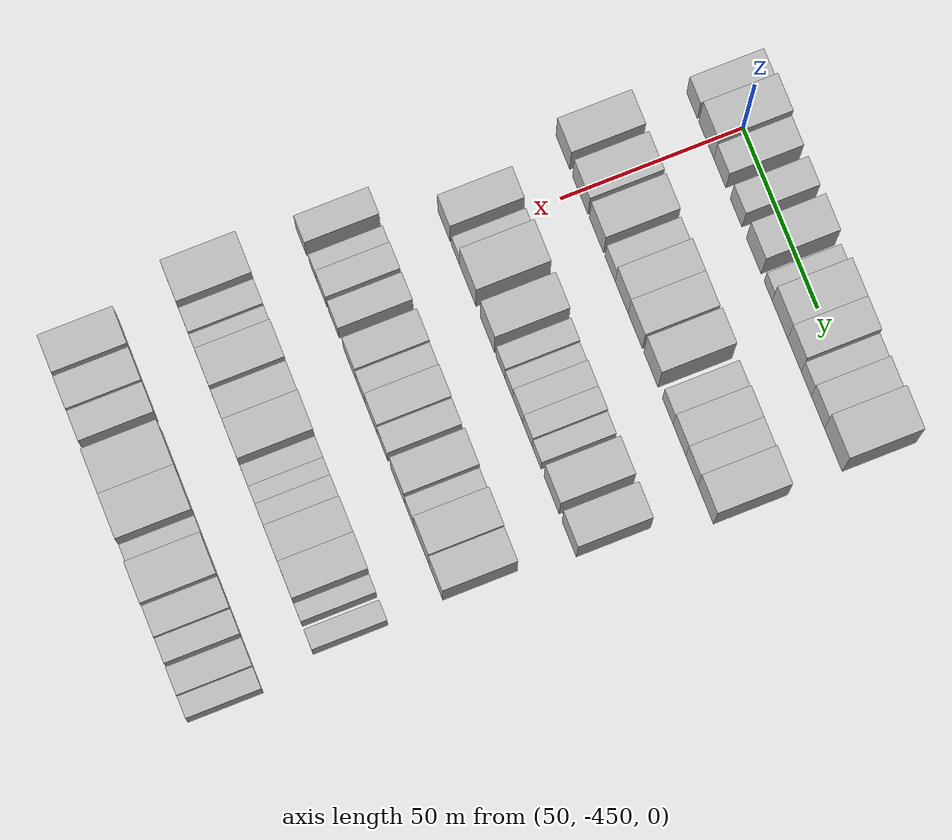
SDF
<sdf version="1.6">
 <world name="default">
  <model name="building_10">
   <static>1</static>
   <pose>50.0000 -460.1695 0 0.000000 0.000000 0.000000</pose>
   <link name="link">
    <pose>0 0 9.00 0 0 0</pose>
    <collision name="collision"><geometry><box><size>20.0000 7.2836 18.0000</size></box></geometry></collision>
    <visual name="visual">
     <cast_shadows>0</cast_shadows>
     <geometry><box><size>20.0000 7.2836 18.0000</size></box></geometry>
     <material>
      <script>
       <uri>model://HANNAS_wall/materials/scripts</uri>
       <uri>model://HANNAS_wall/materials/textures</uri>
       <name>vrc/HANNAS_wall</name>
      </script>
     </material>
    </visual>
   </link>
  </model>
  <model name="building_11">
   <static>1</static>
   <pose>50.0000 -450.4083 0 0.000000 0.000000 0.000000</pose>
   <link name="link">
    <pose>0 0 12.00 0 0 0</pose>
    <collision name="collision"><geometry><box><size>20.0000 10.2388 24.0000</size></box></geometry></collision>
    <visual name="visual">
     <cast_shadows>0</cast_shadows>
     <geometry><box><size>20.0000 10.2388 24.0000</size></box></geometry>
     <material>
      <script>
       <uri>model://HANNAS_wall/materials/scripts</uri>
       <uri>model://HANNAS_wall/materials/textures</uri>
       <name>vrc/HANNAS_wall</name>
      </script>
     </material>
    </visual>
   </link>
  </model>
  <model name="building_12">
   <static>1</static>
   <pose>50.0000 -441.2658 0 0.000000 0.000000 0.000000</pose>
   <link name="link">
    <pose>0 0 9.00 0 0 0</pose>
    <collision name="collision"><geometry><box><size>20.0000 8.0460 18.0000</size></box></geometry></collision>
    <visual name="visual">
     <cast_shadows>0</cast_shadows>
     <geometry><box><size>20.0000 8.0460 18.0000</size></box></geometry>
     <material>
      <script>
       <uri>model://HANNAS_wall/materials/scripts</uri>
       <uri>model://HANNAS_wall/materials/textures</uri>
       <name>vrc/HANNAS_wall</name>
      </script>
     </material>
    </visual>
   </link>
  </model>
  <model name="building_13">
   <static>1</static>
   <pose>50.0000 -430.3157 0 0.000000 0.000000 0.000000</pose>
   <link name="link">
    <pose>0 0 9.00 0 0 0</pose>
    <collision name="collision"><geometry><box><size>20.0000 7.8542 18.0000</size></box></geometry></collision>
    <visual name="visual">
     <cast_shadows>0</cast_shadows>
     <geometry><box><size>20.0000 7.8542 18.0000</size></box></geometry>
     <material>
      <script>
       <uri>model://HANNAS_wall/materials/scripts</uri>
       <uri>model://HANNAS_wall/materials/textures</uri>
       <name>vrc/HANNAS_wall</name>
      </script>
     </material>
    </visual>
   </link>
  </model>
  <model name="building_14">
   <static>1</static>
   <pose>50.0000 -418.4295 0 0.000000 0.000000 0.000000</pose>
   <link name="link">
    <pose>0 0 10.50 0 0 0</pose>
    <collision name="collision"><geometry><box><size>20.0000 9.9183 21.0000</size></box></geometry></collision>
    <visual name="visual">
     <cast_shadows>0</cast_shadows>
     <geometry><box><size>20.0000 9.9183 21.0000</size></box></geometry>
     <material>
      <script>
       <uri>model://HANNAS_wall/materials/scripts</uri>
       <uri>model://HANNAS_wall/materials/textures</uri>
       <name>vrc/HANNAS_wall</name>
      </script>
     </material>
    </visual>
   </link>
  </model>
  <model name="building_15">
   <static>1</static>
   <pose>50.0000 -408.7384 0 0.000000 0.000000 0.000000</pose>
   <link name="link">
    <pose>0 0 6.00 0 0 0</pose>
    <collision name="collision"><geometry><box><size>20.0000 5.4639 12.0000</size></box></geometry></collision>
    <visual name="visual">
     <cast_shadows>0</cast_shadows>
     <geometry><box><size>20.0000 5.4639 12.0000</size></box></geometry>
     <material>
      <script>
       <uri>model://HANNAS_wall/materials/scripts</uri>
       <uri>model://HANNAS_wall/materials/textures</uri>
       <name>vrc/HANNAS_wall</name>
      </script>
     </material>
    </visual>
   </link>
  </model>
  <model name="building_16">
   <static>1</static>
   <pose>50.0000 -400.8172 0 0.000000 0.000000 0.000000</pose>
   <link name="link">
    <pose>0 0 10.50 0 0 0</pose>
    <collision name="collision"><geometry><box><size>20.0000 10.3786 21.0000</size></box></geometry></collision>
    <visual name="visual">
     <cast_shadows>0</cast_shadows>
     <geometry><box><size>20.0000 10.3786 21.0000</size></box></geometry>
     <material>
      <script>
       <uri>model://HANNAS_wall/materials/scripts</uri>
       <uri>model://HANNAS_wall/materials/textures</uri>
       <name>vrc/HANNAS_wall</name>
      </script>
     </material>
    </visual>
   </link>
  </model>
  <model name="building_17">
   <static>1</static>
   <pose>50.0000 -391.1258 0 0.000000 0.000000 0.000000</pose>
   <link name="link">
    <pose>0 0 10.50 0 0 0</pose>
    <collision name="collision"><geometry><box><size>20.0000 9.0041 21.0000</size></box></geometry></collision>
    <visual name="visual">
     <cast_shadows>0</cast_shadows>
     <geometry><box><size>20.0000 9.0041 21.0000</size></box></geometry>
     <material>
      <script>
       <uri>model://HANNAS_wall/materials/scripts</uri>
       <uri>model://HANNAS_wall/materials/textures</uri>
       <name>vrc/HANNAS_wall</name>
      </script>
     </material>
    </visual>
   </link>
  </model>
  <model name="building_18">
   <static>1</static>
   <pose>50.0000 -383.2806 0 0.000000 0.000000 0.000000</pose>
   <link name="link">
    <pose>0 0 7.50 0 0 0</pose>
    <collision name="collision"><geometry><box><size>20.0000 6.6862 15.0000</size></box></geometry></collision>
    <visual name="visual">
     <cast_shadows>0</cast_shadows>
     <geometry><box><size>20.0000 6.6862 15.0000</size></box></geometry>
     <material>
      <script>
       <uri>model://HANNAS_wall/materials/scripts</uri>
       <uri>model://HANNAS_wall/materials/textures</uri>
       <name>vrc/HANNAS_wall</name>
      </script>
     </material>
    </visual>
   </link>
  </model>
  <model name="building_19">
   <static>1</static>
   <pose>50.0000 -375.5136 0 0.000000 0.000000 0.000000</pose>
   <link name="link">
    <pose>0 0 9.00 0 0 0</pose>
    <collision name="collision"><geometry><box><size>20.0000 8.8477 18.0000</size></box></geometry></collision>
    <visual name="visual">
     <cast_shadows>0</cast_shadows>
     <geometry><box><size>20.0000 8.8477 18.0000</size></box></geometry>
     <material>
      <script>
       <uri>model://HANNAS_wall/materials/scripts</uri>
       <uri>model://HANNAS_wall/materials/textures</uri>
       <name>vrc/HANNAS_wall</name>
      </script>
     </material>
    </visual>
   </link>
  </model>
  <model name="building_20">
   <static>1</static>
   <pose>50.0000 -365.2161 0 0.000000 0.000000 0.000000</pose>
   <link name="link">
    <pose>0 0 12.00 0 0 0</pose>
    <collision name="collision"><geometry><box><size>20.0000 11.7475 24.0000</size></box></geometry></collision>
    <visual name="visual">
     <cast_shadows>0</cast_shadows>
     <geometry><box><size>20.0000 11.7475 24.0000</size></box></geometry>
     <material>
      <script>
       <uri>model://HANNAS_wall/materials/scripts</uri>
       <uri>model://HANNAS_wall/materials/textures</uri>
       <name>vrc/HANNAS_wall</name>
      </script>
     </material>
    </visual>
   </link>
  </model>
  <model name="building_138">
   <static>1</static>
   <pose>85.0000 -460.8931 0 0.000000 0.000000 0.000000</pose>
   <link name="link">
    <pose>0 0 10.50 0 0 0</pose>
    <collision name="collision"><geometry><box><size>20.0000 9.4354 21.0000</size></box></geometry></collision>
    <visual name="visual">
     <cast_shadows>0</cast_shadows>
     <geometry><box><size>20.0000 9.4354 21.0000</size></box></geometry>
     <material>
      <script>
       <uri>model://HANNAS_wall/materials/scripts</uri>
       <uri>model://HANNAS_wall/materials/textures</uri>
       <name>vrc/HANNAS_wall</name>
      </script>
     </material>
    </visual>
   </link>
  </model>
  <model name="building_139">
   <static>1</static>
   <pose>85.0000 -448.9372 0 0.000000 0.000000 0.000000</pose>
   <link name="link">
    <pose>0 0 10.50 0 0 0</pose>
    <collision name="collision"><geometry><box><size>20.0000 10.4764 21.0000</size></box></geometry></collision>
    <visual name="visual">
     <cast_shadows>0</cast_shadows>
     <geometry><box><size>20.0000 10.4764 21.0000</size></box></geometry>
     <material>
      <script>
       <uri>model://HANNAS_wall/materials/scripts</uri>
       <uri>model://HANNAS_wall/materials/textures</uri>
       <name>vrc/HANNAS_wall</name>
      </script>
     </material>
    </visual>
   </link>
  </model>
  <model name="building_140">
   <static>1</static>
   <pose>85.0000 -437.8770 0 0.000000 0.000000 0.000000</pose>
   <link name="link">
    <pose>0 0 10.50 0 0 0</pose>
    <collision name="collision"><geometry><box><size>20.0000 9.6440 21.0000</size></box></geometry></collision>
    <visual name="visual">
     <cast_shadows>0</cast_shadows>
     <geometry><box><size>20.0000 9.6440 21.0000</size></box></geometry>
     <material>
      <script>
       <uri>model://HANNAS_wall/materials/scripts</uri>
       <uri>model://HANNAS_wall/materials/textures</uri>
       <name>vrc/HANNAS_wall</name>
      </script>
     </material>
    </visual>
   </link>
  </model>
  <model name="building_141">
   <static>1</static>
   <pose>85.0000 -428.5387 0 0.000000 0.000000 0.000000</pose>
   <link name="link">
    <pose>0 0 7.50 0 0 0</pose>
    <collision name="collision"><geometry><box><size>20.0000 7.0325 15.0000</size></box></geometry></collision>
    <visual name="visual">
     <cast_shadows>0</cast_shadows>
     <geometry><box><size>20.0000 7.0325 15.0000</size></box></geometry>
     <material>
      <script>
       <uri>model://HANNAS_wall/materials/scripts</uri>
       <uri>model://HANNAS_wall/materials/textures</uri>
       <name>vrc/HANNAS_wall</name>
      </script>
     </material>
    </visual>
   </link>
  </model>
  <model name="building_142">
   <static>1</static>
   <pose>85.0000 -420.6408 0 0.000000 0.000000 0.000000</pose>
   <link name="link">
    <pose>0 0 10.50 0 0 0</pose>
    <collision name="collision"><geometry><box><size>20.0000 8.7633 21.0000</size></box></geometry></collision>
    <visual name="visual">
     <cast_shadows>0</cast_shadows>
     <geometry><box><size>20.0000 8.7633 21.0000</size></box></geometry>
     <material>
      <script>
       <uri>model://HANNAS_wall/materials/scripts</uri>
       <uri>model://HANNAS_wall/materials/textures</uri>
       <name>vrc/HANNAS_wall</name>
      </script>
     </material>
    </visual>
   </link>
  </model>
  <model name="building_143">
   <static>1</static>
   <pose>85.0000 -411.5036 0 0.000000 0.000000 0.000000</pose>
   <link name="link">
    <pose>0 0 10.50 0 0 0</pose>
    <collision name="collision"><geometry><box><size>20.0000 9.5112 21.0000</size></box></geometry></collision>
    <visual name="visual">
     <cast_shadows>0</cast_shadows>
     <geometry><box><size>20.0000 9.5112 21.0000</size></box></geometry>
     <material>
      <script>
       <uri>model://HANNAS_wall/materials/scripts</uri>
       <uri>model://HANNAS_wall/materials/textures</uri>
       <name>vrc/HANNAS_wall</name>
      </script>
     </material>
    </visual>
   </link>
  </model>
  <model name="building_144">
   <static>1</static>
   <pose>85.0000 -400.9338 0 0.000000 0.000000 0.000000</pose>
   <link name="link">
    <pose>0 0 12.00 0 0 0</pose>
    <collision name="collision"><geometry><box><size>20.0000 9.6284 24.0000</size></box></geometry></collision>
    <visual name="visual">
     <cast_shadows>0</cast_shadows>
     <geometry><box><size>20.0000 9.6284 24.0000</size></box></geometry>
     <material>
      <script>
       <uri>model://HANNAS_wall/materials/scripts</uri>
       <uri>model://HANNAS_wall/materials/textures</uri>
       <name>vrc/HANNAS_wall</name>
      </script>
     </material>
    </visual>
   </link>
  </model>
  <model name="building_145">
   <static>1</static>
   <pose>85.0000 -389.4943 0 0.000000 0.000000 0.000000</pose>
   <link name="link">
    <pose>0 0 7.50 0 0 0</pose>
    <collision name="collision"><geometry><box><size>20.0000 7.2508 15.0000</size></box></geometry></collision>
    <visual name="visual">
     <cast_shadows>0</cast_shadows>
     <geometry><box><size>20.0000 7.2508 15.0000</size></box></geometry>
     <material>
      <script>
       <uri>model://HANNAS_wall/materials/scripts</uri>
       <uri>model://HANNAS_wall/materials/textures</uri>
       <name>vrc/HANNAS_wall</name>
      </script>
     </material>
    </visual>
   </link>
  </model>
  <model name="building_146">
   <static>1</static>
   <pose>85.0000 -381.6085 0 0.000000 0.000000 0.000000</pose>
   <link name="link">
    <pose>0 0 9.00 0 0 0</pose>
    <collision name="collision"><geometry><box><size>20.0000 8.5208 18.0000</size></box></geometry></collision>
    <visual name="visual">
     <cast_shadows>0</cast_shadows>
     <geometry><box><size>20.0000 8.5208 18.0000</size></box></geometry>
     <material>
      <script>
       <uri>model://HANNAS_wall/materials/scripts</uri>
       <uri>model://HANNAS_wall/materials/textures</uri>
       <name>vrc/HANNAS_wall</name>
      </script>
     </material>
    </visual>
   </link>
  </model>
  <model name="building_147">
   <static>1</static>
   <pose>85.0000 -373.3010 0 0.000000 0.000000 0.000000</pose>
   <link name="link">
    <pose>0 0 9.00 0 0 0</pose>
    <collision name="collision"><geometry><box><size>20.0000 8.0942 18.0000</size></box></geometry></collision>
    <visual name="visual">
     <cast_shadows>0</cast_shadows>
     <geometry><box><size>20.0000 8.0942 18.0000</size></box></geometry>
     <material>
      <script>
       <uri>model://HANNAS_wall/materials/scripts</uri>
       <uri>model://HANNAS_wall/materials/textures</uri>
       <name>vrc/HANNAS_wall</name>
      </script>
     </material>
    </visual>
   </link>
  </model>
  <model name="building_148">
   <static>1</static>
   <pose>85.0000 -364.0726 0 0.000000 0.000000 0.000000</pose>
   <link name="link">
    <pose>0 0 10.50 0 0 0</pose>
    <collision name="collision"><geometry><box><size>20.0000 10.3627 21.0000</size></box></geometry></collision>
    <visual name="visual">
     <cast_shadows>0</cast_shadows>
     <geometry><box><size>20.0000 10.3627 21.0000</size></box></geometry>
     <material>
      <script>
       <uri>model://HANNAS_wall/materials/scripts</uri>
       <uri>model://HANNAS_wall/materials/textures</uri>
       <name>vrc/HANNAS_wall</name>
      </script>
     </material>
    </visual>
   </link>
  </model>
  <model name="building_260">
   <static>1</static>
   <pose>120.0000 -454.1646 0 0.000000 0.000000 0.000000</pose>
   <link name="link">
    <pose>0 0 10.50 0 0 0</pose>
    <collision name="collision"><geometry><box><size>20.0000 8.5362 21.0000</size></box></geometry></collision>
    <visual name="visual">
     <cast_shadows>0</cast_shadows>
     <geometry><box><size>20.0000 8.5362 21.0000</size></box></geometry>
     <material>
      <script>
       <uri>model://HANNAS_wall/materials/scripts</uri>
       <uri>model://HANNAS_wall/materials/textures</uri>
       <name>vrc/HANNAS_wall</name>
      </script>
     </material>
    </visual>
   </link>
  </model>
  <model name="building_261">
   <static>1</static>
   <pose>120.0000 -446.1384 0 0.000000 0.000000 0.000000</pose>
   <link name="link">
    <pose>0 0 6.00 0 0 0</pose>
    <collision name="collision"><geometry><box><size>20.0000 5.5163 12.0000</size></box></geometry></collision>
    <visual name="visual">
     <cast_shadows>0</cast_shadows>
     <geometry><box><size>20.0000 5.5163 12.0000</size></box></geometry>
     <material>
      <script>
       <uri>model://HANNAS_wall/materials/scripts</uri>
       <uri>model://HANNAS_wall/materials/textures</uri>
       <name>vrc/HANNAS_wall</name>
      </script>
     </material>
    </visual>
   </link>
  </model>
  <model name="building_262">
   <static>1</static>
   <pose>120.0000 -437.7333 0 0.000000 0.000000 0.000000</pose>
   <link name="link">
    <pose>0 0 12.00 0 0 0</pose>
    <collision name="collision"><geometry><box><size>20.0000 11.2940 24.0000</size></box></geometry></collision>
    <visual name="visual">
     <cast_shadows>0</cast_shadows>
     <geometry><box><size>20.0000 11.2940 24.0000</size></box></geometry>
     <material>
      <script>
       <uri>model://HANNAS_wall/materials/scripts</uri>
       <uri>model://HANNAS_wall/materials/textures</uri>
       <name>vrc/HANNAS_wall</name>
      </script>
     </material>
    </visual>
   </link>
  </model>
  <model name="building_263">
   <static>1</static>
   <pose>120.0000 -424.2362 0 0.000000 0.000000 0.000000</pose>
   <link name="link">
    <pose>0 0 12.00 0 0 0</pose>
    <collision name="collision"><geometry><box><size>20.0000 9.7001 24.0000</size></box></geometry></collision>
    <visual name="visual">
     <cast_shadows>0</cast_shadows>
     <geometry><box><size>20.0000 9.7001 24.0000</size></box></geometry>
     <material>
      <script>
       <uri>model://HANNAS_wall/materials/scripts</uri>
       <uri>model://HANNAS_wall/materials/textures</uri>
       <name>vrc/HANNAS_wall</name>
      </script>
     </material>
    </visual>
   </link>
  </model>
  <model name="building_264">
   <static>1</static>
   <pose>120.0000 -415.3367 0 0.000000 0.000000 0.000000</pose>
   <link name="link">
    <pose>0 0 7.50 0 0 0</pose>
    <collision name="collision"><geometry><box><size>20.0000 6.0988 15.0000</size></box></geometry></collision>
    <visual name="visual">
     <cast_shadows>0</cast_shadows>
     <geometry><box><size>20.0000 6.0988 15.0000</size></box></geometry>
     <material>
      <script>
       <uri>model://HANNAS_wall/materials/scripts</uri>
       <uri>model://HANNAS_wall/materials/textures</uri>
       <name>vrc/HANNAS_wall</name>
      </script>
     </material>
    </visual>
   </link>
  </model>
  <model name="building_265">
   <static>1</static>
   <pose>120.0000 -409.6301 0 0.000000 0.000000 0.000000</pose>
   <link name="link">
    <pose>0 0 6.00 0 0 0</pose>
    <collision name="collision"><geometry><box><size>20.0000 5.3146 12.0000</size></box></geometry></collision>
    <visual name="visual">
     <cast_shadows>0</cast_shadows>
     <geometry><box><size>20.0000 5.3146 12.0000</size></box></geometry>
     <material>
      <script>
       <uri>model://HANNAS_wall/materials/scripts</uri>
       <uri>model://HANNAS_wall/materials/textures</uri>
       <name>vrc/HANNAS_wall</name>
      </script>
     </material>
    </visual>
   </link>
  </model>
  <model name="building_266">
   <static>1</static>
   <pose>120.0000 -403.4768 0 0.000000 0.000000 0.000000</pose>
   <link name="link">
    <pose>0 0 7.50 0 0 0</pose>
    <collision name="collision"><geometry><box><size>20.0000 6.9920 15.0000</size></box></geometry></collision>
    <visual name="visual">
     <cast_shadows>0</cast_shadows>
     <geometry><box><size>20.0000 6.9920 15.0000</size></box></geometry>
     <material>
      <script>
       <uri>model://HANNAS_wall/materials/scripts</uri>
       <uri>model://HANNAS_wall/materials/textures</uri>
       <name>vrc/HANNAS_wall</name>
      </script>
     </material>
    </visual>
   </link>
  </model>
  <model name="building_267">
   <static>1</static>
   <pose>120.0000 -396.7934 0 0.000000 0.000000 0.000000</pose>
   <link name="link">
    <pose>0 0 7.50 0 0 0</pose>
    <collision name="collision"><geometry><box><size>20.0000 6.3747 15.0000</size></box></geometry></collision>
    <visual name="visual">
     <cast_shadows>0</cast_shadows>
     <geometry><box><size>20.0000 6.3747 15.0000</size></box></geometry>
     <material>
      <script>
       <uri>model://HANNAS_wall/materials/scripts</uri>
       <uri>model://HANNAS_wall/materials/textures</uri>
       <name>vrc/HANNAS_wall</name>
      </script>
     </material>
    </visual>
   </link>
  </model>
  <model name="building_268">
   <static>1</static>
   <pose>120.0000 -390.6112 0 0.000000 0.000000 0.000000</pose>
   <link name="link">
    <pose>0 0 6.00 0 0 0</pose>
    <collision name="collision"><geometry><box><size>20.0000 5.9897 12.0000</size></box></geometry></collision>
    <visual name="visual">
     <cast_shadows>0</cast_shadows>
     <geometry><box><size>20.0000 5.9897 12.0000</size></box></geometry>
     <material>
      <script>
       <uri>model://HANNAS_wall/materials/scripts</uri>
       <uri>model://HANNAS_wall/materials/textures</uri>
       <name>vrc/HANNAS_wall</name>
      </script>
     </material>
    </visual>
   </link>
  </model>
  <model name="building_269">
   <static>1</static>
   <pose>120.0000 -380.5151 0 0.000000 0.000000 0.000000</pose>
   <link name="link">
    <pose>0 0 10.50 0 0 0</pose>
    <collision name="collision"><geometry><box><size>20.0000 10.2025 21.0000</size></box></geometry></collision>
    <visual name="visual">
     <cast_shadows>0</cast_shadows>
     <geometry><box><size>20.0000 10.2025 21.0000</size></box></geometry>
     <material>
      <script>
       <uri>model://HANNAS_wall/materials/scripts</uri>
       <uri>model://HANNAS_wall/materials/textures</uri>
       <name>vrc/HANNAS_wall</name>
      </script>
     </material>
    </visual>
   </link>
  </model>
  <model name="building_270">
   <static>1</static>
   <pose>120.0000 -368.5927 0 0.000000 0.000000 0.000000</pose>
   <link name="link">
    <pose>0 0 10.50 0 0 0</pose>
    <collision name="collision"><geometry><box><size>20.0000 9.6423 21.0000</size></box></geometry></collision>
    <visual name="visual">
     <cast_shadows>0</cast_shadows>
     <geometry><box><size>20.0000 9.6423 21.0000</size></box></geometry>
     <material>
      <script>
       <uri>model://HANNAS_wall/materials/scripts</uri>
       <uri>model://HANNAS_wall/materials/textures</uri>
       <name>vrc/HANNAS_wall</name>
      </script>
     </material>
    </visual>
   </link>
  </model>
  <model name="building_393">
   <static>1</static>
   <pose>155.0000 -463.5714 0 0.000000 0.000000 0.000000</pose>
   <link name="link">
    <pose>0 0 9.00 0 0 0</pose>
    <collision name="collision"><geometry><box><size>20.0000 7.3619 18.0000</size></box></geometry></collision>
    <visual name="visual">
     <cast_shadows>0</cast_shadows>
     <geometry><box><size>20.0000 7.3619 18.0000</size></box></geometry>
     <material>
      <script>
       <uri>model://HANNAS_wall/materials/scripts</uri>
       <uri>model://HANNAS_wall/materials/textures</uri>
       <name>vrc/HANNAS_wall</name>
      </script>
     </material>
    </visual>
   </link>
  </model>
  <model name="building_394">
   <static>1</static>
   <pose>155.0000 -455.3703 0 0.000000 0.000000 0.000000</pose>
   <link name="link">
    <pose>0 0 6.00 0 0 0</pose>
    <collision name="collision"><geometry><box><size>20.0000 5.0402 12.0000</size></box></geometry></collision>
    <visual name="visual">
     <cast_shadows>0</cast_shadows>
     <geometry><box><size>20.0000 5.0402 12.0000</size></box></geometry>
     <material>
      <script>
       <uri>model://HANNAS_wall/materials/scripts</uri>
       <uri>model://HANNAS_wall/materials/textures</uri>
       <name>vrc/HANNAS_wall</name>
      </script>
     </material>
    </visual>
   </link>
  </model>
  <model name="building_395">
   <static>1</static>
   <pose>155.0000 -449.2416 0 0.000000 0.000000 0.000000</pose>
   <link name="link">
    <pose>0 0 7.50 0 0 0</pose>
    <collision name="collision"><geometry><box><size>20.0000 7.2172 15.0000</size></box></geometry></collision>
    <visual name="visual">
     <cast_shadows>0</cast_shadows>
     <geometry><box><size>20.0000 7.2172 15.0000</size></box></geometry>
     <material>
      <script>
       <uri>model://HANNAS_wall/materials/scripts</uri>
       <uri>model://HANNAS_wall/materials/textures</uri>
       <name>vrc/HANNAS_wall</name>
      </script>
     </material>
    </visual>
   </link>
  </model>
  <model name="building_396">
   <static>1</static>
   <pose>155.0000 -440.9008 0 0.000000 0.000000 0.000000</pose>
   <link name="link">
    <pose>0 0 7.50 0 0 0</pose>
    <collision name="collision"><geometry><box><size>20.0000 7.4643 15.0000</size></box></geometry></collision>
    <visual name="visual">
     <cast_shadows>0</cast_shadows>
     <geometry><box><size>20.0000 7.4643 15.0000</size></box></geometry>
     <material>
      <script>
       <uri>model://HANNAS_wall/materials/scripts</uri>
       <uri>model://HANNAS_wall/materials/textures</uri>
       <name>vrc/HANNAS_wall</name>
      </script>
     </material>
    </visual>
   </link>
  </model>
  <model name="building_397">
   <static>1</static>
   <pose>155.0000 -429.8754 0 0.000000 0.000000 0.000000</pose>
   <link name="link">
    <pose>0 0 9.00 0 0 0</pose>
    <collision name="collision"><geometry><box><size>20.0000 8.5865 18.0000</size></box></geometry></collision>
    <visual name="visual">
     <cast_shadows>0</cast_shadows>
     <geometry><box><size>20.0000 8.5865 18.0000</size></box></geometry>
     <material>
      <script>
       <uri>model://HANNAS_wall/materials/scripts</uri>
       <uri>model://HANNAS_wall/materials/textures</uri>
       <name>vrc/HANNAS_wall</name>
      </script>
     </material>
    </visual>
   </link>
  </model>
  <model name="building_398">
   <static>1</static>
   <pose>155.0000 -422.3509 0 0.000000 0.000000 0.000000</pose>
   <link name="link">
    <pose>0 0 7.50 0 0 0</pose>
    <collision name="collision"><geometry><box><size>20.0000 6.4624 15.0000</size></box></geometry></collision>
    <visual name="visual">
     <cast_shadows>0</cast_shadows>
     <geometry><box><size>20.0000 6.4624 15.0000</size></box></geometry>
     <material>
      <script>
       <uri>model://HANNAS_wall/materials/scripts</uri>
       <uri>model://HANNAS_wall/materials/textures</uri>
       <name>vrc/HANNAS_wall</name>
      </script>
     </material>
    </visual>
   </link>
  </model>
  <model name="building_399">
   <static>1</static>
   <pose>155.0000 -414.8253 0 0.000000 0.000000 0.000000</pose>
   <link name="link">
    <pose>0 0 9.00 0 0 0</pose>
    <collision name="collision"><geometry><box><size>20.0000 8.5888 18.0000</size></box></geometry></collision>
    <visual name="visual">
     <cast_shadows>0</cast_shadows>
     <geometry><box><size>20.0000 8.5888 18.0000</size></box></geometry>
     <material>
      <script>
       <uri>model://HANNAS_wall/materials/scripts</uri>
       <uri>model://HANNAS_wall/materials/textures</uri>
       <name>vrc/HANNAS_wall</name>
      </script>
     </material>
    </visual>
   </link>
  </model>
  <model name="building_400">
   <static>1</static>
   <pose>155.0000 -407.0105 0 0.000000 0.000000 0.000000</pose>
   <link name="link">
    <pose>0 0 7.50 0 0 0</pose>
    <collision name="collision"><geometry><box><size>20.0000 7.0408 15.0000</size></box></geometry></collision>
    <visual name="visual">
     <cast_shadows>0</cast_shadows>
     <geometry><box><size>20.0000 7.0408 15.0000</size></box></geometry>
     <material>
      <script>
       <uri>model://HANNAS_wall/materials/scripts</uri>
       <uri>model://HANNAS_wall/materials/textures</uri>
       <name>vrc/HANNAS_wall</name>
      </script>
     </material>
    </visual>
   </link>
  </model>
  <model name="building_401">
   <static>1</static>
   <pose>155.0000 -396.6072 0 0.000000 0.000000 0.000000</pose>
   <link name="link">
    <pose>0 0 10.50 0 0 0</pose>
    <collision name="collision"><geometry><box><size>20.0000 9.7658 21.0000</size></box></geometry></collision>
    <visual name="visual">
     <cast_shadows>0</cast_shadows>
     <geometry><box><size>20.0000 9.7658 21.0000</size></box></geometry>
     <material>
      <script>
       <uri>model://HANNAS_wall/materials/scripts</uri>
       <uri>model://HANNAS_wall/materials/textures</uri>
       <name>vrc/HANNAS_wall</name>
      </script>
     </material>
    </visual>
   </link>
  </model>
  <model name="building_402">
   <static>1</static>
   <pose>155.0000 -388.5882 0 0.000000 0.000000 0.000000</pose>
   <link name="link">
    <pose>0 0 7.50 0 0 0</pose>
    <collision name="collision"><geometry><box><size>20.0000 6.2722 15.0000</size></box></geometry></collision>
    <visual name="visual">
     <cast_shadows>0</cast_shadows>
     <geometry><box><size>20.0000 6.2722 15.0000</size></box></geometry>
     <material>
      <script>
       <uri>model://HANNAS_wall/materials/scripts</uri>
       <uri>model://HANNAS_wall/materials/textures</uri>
       <name>vrc/HANNAS_wall</name>
      </script>
     </material>
    </visual>
   </link>
  </model>
  <model name="building_403">
   <static>1</static>
   <pose>155.0000 -380.2979 0 0.000000 0.000000 0.000000</pose>
   <link name="link">
    <pose>0 0 12.00 0 0 0</pose>
    <collision name="collision"><geometry><box><size>20.0000 10.3086 24.0000</size></box></geometry></collision>
    <visual name="visual">
     <cast_shadows>0</cast_shadows>
     <geometry><box><size>20.0000 10.3086 24.0000</size></box></geometry>
     <material>
      <script>
       <uri>model://HANNAS_wall/materials/scripts</uri>
       <uri>model://HANNAS_wall/materials/textures</uri>
       <name>vrc/HANNAS_wall</name>
      </script>
     </material>
    </visual>
   </link>
  </model>
  <model name="building_404">
   <static>1</static>
   <pose>155.0000 -370.5296 0 0.000000 0.000000 0.000000</pose>
   <link name="link">
    <pose>0 0 10.50 0 0 0</pose>
    <collision name="collision"><geometry><box><size>20.0000 9.2280 21.0000</size></box></geometry></collision>
    <visual name="visual">
     <cast_shadows>0</cast_shadows>
     <geometry><box><size>20.0000 9.2280 21.0000</size></box></geometry>
     <material>
      <script>
       <uri>model://HANNAS_wall/materials/scripts</uri>
       <uri>model://HANNAS_wall/materials/textures</uri>
       <name>vrc/HANNAS_wall</name>
      </script>
     </material>
    </visual>
   </link>
  </model>
  <model name="building_517">
   <static>1</static>
   <pose>190.0000 -462.2081 0 0.000000 0.000000 0.000000</pose>
   <link name="link">
    <pose>0 0 12.00 0 0 0</pose>
    <collision name="collision"><geometry><box><size>20.0000 11.1847 24.0000</size></box></geometry></collision>
    <visual name="visual">
     <cast_shadows>0</cast_shadows>
     <geometry><box><size>20.0000 11.1847 24.0000</size></box></geometry>
     <material>
      <script>
       <uri>model://HANNAS_wall/materials/scripts</uri>
       <uri>model://HANNAS_wall/materials/textures</uri>
       <name>vrc/HANNAS_wall</name>
      </script>
     </material>
    </visual>
   </link>
  </model>
  <model name="building_518">
   <static>1</static>
   <pose>190.0000 -453.2732 0 0.000000 0.000000 0.000000</pose>
   <link name="link">
    <pose>0 0 7.50 0 0 0</pose>
    <collision name="collision"><geometry><box><size>20.0000 6.6851 15.0000</size></box></geometry></collision>
    <visual name="visual">
     <cast_shadows>0</cast_shadows>
     <geometry><box><size>20.0000 6.6851 15.0000</size></box></geometry>
     <material>
      <script>
       <uri>model://HANNAS_wall/materials/scripts</uri>
       <uri>model://HANNAS_wall/materials/textures</uri>
       <name>vrc/HANNAS_wall</name>
      </script>
     </material>
    </visual>
   </link>
  </model>
  <model name="building_519">
   <static>1</static>
   <pose>190.0000 -446.9901 0 0.000000 0.000000 0.000000</pose>
   <link name="link">
    <pose>0 0 6.00 0 0 0</pose>
    <collision name="collision"><geometry><box><size>20.0000 5.8809 12.0000</size></box></geometry></collision>
    <visual name="visual">
     <cast_shadows>0</cast_shadows>
     <geometry><box><size>20.0000 5.8809 12.0000</size></box></geometry>
     <material>
      <script>
       <uri>model://HANNAS_wall/materials/scripts</uri>
       <uri>model://HANNAS_wall/materials/textures</uri>
       <name>vrc/HANNAS_wall</name>
      </script>
     </material>
    </visual>
   </link>
  </model>
  <model name="building_520">
   <static>1</static>
   <pose>190.0000 -438.9913 0 0.000000 0.000000 0.000000</pose>
   <link name="link">
    <pose>0 0 12.00 0 0 0</pose>
    <collision name="collision"><geometry><box><size>20.0000 10.1167 24.0000</size></box></geometry></collision>
    <visual name="visual">
     <cast_shadows>0</cast_shadows>
     <geometry><box><size>20.0000 10.1167 24.0000</size></box></geometry>
     <material>
      <script>
       <uri>model://HANNAS_wall/materials/scripts</uri>
       <uri>model://HANNAS_wall/materials/textures</uri>
       <name>vrc/HANNAS_wall</name>
      </script>
     </material>
    </visual>
   </link>
  </model>
  <model name="building_521">
   <static>1</static>
   <pose>190.0000 -429.5264 0 0.000000 0.000000 0.000000</pose>
   <link name="link">
    <pose>0 0 9.00 0 0 0</pose>
    <collision name="collision"><geometry><box><size>20.0000 8.8132 18.0000</size></box></geometry></collision>
    <visual name="visual">
     <cast_shadows>0</cast_shadows>
     <geometry><box><size>20.0000 8.8132 18.0000</size></box></geometry>
     <material>
      <script>
       <uri>model://HANNAS_wall/materials/scripts</uri>
       <uri>model://HANNAS_wall/materials/textures</uri>
       <name>vrc/HANNAS_wall</name>
      </script>
     </material>
    </visual>
   </link>
  </model>
  <model name="building_522">
   <static>1</static>
   <pose>190.0000 -419.8306 0 0.000000 0.000000 0.000000</pose>
   <link name="link">
    <pose>0 0 12.00 0 0 0</pose>
    <collision name="collision"><geometry><box><size>20.0000 10.5785 24.0000</size></box></geometry></collision>
    <visual name="visual">
     <cast_shadows>0</cast_shadows>
     <geometry><box><size>20.0000 10.5785 24.0000</size></box></geometry>
     <material>
      <script>
       <uri>model://HANNAS_wall/materials/scripts</uri>
       <uri>model://HANNAS_wall/materials/textures</uri>
       <name>vrc/HANNAS_wall</name>
      </script>
     </material>
    </visual>
   </link>
  </model>
  <model name="building_523">
   <static>1</static>
   <pose>190.0000 -411.7073 0 0.000000 0.000000 0.000000</pose>
   <link name="link">
    <pose>0 0 6.00 0 0 0</pose>
    <collision name="collision"><geometry><box><size>20.0000 5.6681 12.0000</size></box></geometry></collision>
    <visual name="visual">
     <cast_shadows>0</cast_shadows>
     <geometry><box><size>20.0000 5.6681 12.0000</size></box></geometry>
     <material>
      <script>
       <uri>model://HANNAS_wall/materials/scripts</uri>
       <uri>model://HANNAS_wall/materials/textures</uri>
       <name>vrc/HANNAS_wall</name>
      </script>
     </material>
    </visual>
   </link>
  </model>
  <model name="building_524">
   <static>1</static>
   <pose>190.0000 -406.3018 0 0.000000 0.000000 0.000000</pose>
   <link name="link">
    <pose>0 0 6.00 0 0 0</pose>
    <collision name="collision"><geometry><box><size>20.0000 5.1428 12.0000</size></box></geometry></collision>
    <visual name="visual">
     <cast_shadows>0</cast_shadows>
     <geometry><box><size>20.0000 5.1428 12.0000</size></box></geometry>
     <material>
      <script>
       <uri>model://HANNAS_wall/materials/scripts</uri>
       <uri>model://HANNAS_wall/materials/textures</uri>
       <name>vrc/HANNAS_wall</name>
      </script>
     </material>
    </visual>
   </link>
  </model>
  <model name="building_525">
   <static>1</static>
   <pose>190.0000 -400.4768 0 0.000000 0.000000 0.000000</pose>
   <link name="link">
    <pose>0 0 7.50 0 0 0</pose>
    <collision name="collision"><geometry><box><size>20.0000 6.5073 15.0000</size></box></geometry></collision>
    <visual name="visual">
     <cast_shadows>0</cast_shadows>
     <geometry><box><size>20.0000 6.5073 15.0000</size></box></geometry>
     <material>
      <script>
       <uri>model://HANNAS_wall/materials/scripts</uri>
       <uri>model://HANNAS_wall/materials/textures</uri>
       <name>vrc/HANNAS_wall</name>
      </script>
     </material>
    </visual>
   </link>
  </model>
  <model name="building_526">
   <static>1</static>
   <pose>190.0000 -392.2543 0 0.000000 0.000000 0.000000</pose>
   <link name="link">
    <pose>0 0 10.50 0 0 0</pose>
    <collision name="collision"><geometry><box><size>20.0000 9.9378 21.0000</size></box></geometry></collision>
    <visual name="visual">
     <cast_shadows>0</cast_shadows>
     <geometry><box><size>20.0000 9.9378 21.0000</size></box></geometry>
     <material>
      <script>
       <uri>model://HANNAS_wall/materials/scripts</uri>
       <uri>model://HANNAS_wall/materials/textures</uri>
       <name>vrc/HANNAS_wall</name>
      </script>
     </material>
    </visual>
   </link>
  </model>
  <model name="building_527">
   <static>1</static>
   <pose>190.0000 -382.3724 0 0.000000 0.000000 0.000000</pose>
   <link name="link">
    <pose>0 0 12.00 0 0 0</pose>
    <collision name="collision"><geometry><box><size>20.0000 9.8259 24.0000</size></box></geometry></collision>
    <visual name="visual">
     <cast_shadows>0</cast_shadows>
     <geometry><box><size>20.0000 9.8259 24.0000</size></box></geometry>
     <material>
      <script>
       <uri>model://HANNAS_wall/materials/scripts</uri>
       <uri>model://HANNAS_wall/materials/textures</uri>
       <name>vrc/HANNAS_wall</name>
      </script>
     </material>
    </visual>
   </link>
  </model>
  <model name="building_528">
   <static>1</static>
   <pose>190.0000 -375.0275 0 0.000000 0.000000 0.000000</pose>
   <link name="link">
    <pose>0 0 6.00 0 0 0</pose>
    <collision name="collision"><geometry><box><size>20.0000 4.8639 12.0000</size></box></geometry></collision>
    <visual name="visual">
     <cast_shadows>0</cast_shadows>
     <geometry><box><size>20.0000 4.8639 12.0000</size></box></geometry>
     <material>
      <script>
       <uri>model://HANNAS_wall/materials/scripts</uri>
       <uri>model://HANNAS_wall/materials/textures</uri>
       <name>vrc/HANNAS_wall</name>
      </script>
     </material>
    </visual>
   </link>
  </model>
  <model name="building_529">
   <static>1</static>
   <pose>190.0000 -367.8512 0 0.000000 0.000000 0.000000</pose>
   <link name="link">
    <pose>0 0 6.00 0 0 0</pose>
    <collision name="collision"><geometry><box><size>20.0000 5.4887 12.0000</size></box></geometry></collision>
    <visual name="visual">
     <cast_shadows>0</cast_shadows>
     <geometry><box><size>20.0000 5.4887 12.0000</size></box></geometry>
     <material>
      <script>
       <uri>model://HANNAS_wall/materials/scripts</uri>
       <uri>model://HANNAS_wall/materials/textures</uri>
       <name>vrc/HANNAS_wall</name>
      </script>
     </material>
    </visual>
   </link>
  </model>
  <model name="building_640">
   <static>1</static>
   <pose>225.0000 -456.9036 0 0.000000 0.000000 0.000000</pose>
   <link name="link">
    <pose>0 0 10.50 0 0 0</pose>
    <collision name="collision"><geometry><box><size>20.0000 10.0547 21.0000</size></box></geometry></collision>
    <visual name="visual">
     <cast_shadows>0</cast_shadows>
     <geometry><box><size>20.0000 10.0547 21.0000</size></box></geometry>
     <material>
      <script>
       <uri>model://HANNAS_wall/materials/scripts</uri>
       <uri>model://HANNAS_wall/materials/textures</uri>
       <name>vrc/HANNAS_wall</name>
      </script>
     </material>
    </visual>
   </link>
  </model>
  <model name="building_641">
   <static>1</static>
   <pose>225.0000 -446.4709 0 0.000000 0.000000 0.000000</pose>
   <link name="link">
    <pose>0 0 10.50 0 0 0</pose>
    <collision name="collision"><geometry><box><size>20.0000 8.8106 21.0000</size></box></geometry></collision>
    <visual name="visual">
     <cast_shadows>0</cast_shadows>
     <geometry><box><size>20.0000 8.8106 21.0000</size></box></geometry>
     <material>
      <script>
       <uri>model://HANNAS_wall/materials/scripts</uri>
       <uri>model://HANNAS_wall/materials/textures</uri>
       <name>vrc/HANNAS_wall</name>
      </script>
     </material>
    </visual>
   </link>
  </model>
  <model name="building_642">
   <static>1</static>
   <pose>225.0000 -438.0100 0 0.000000 0.000000 0.000000</pose>
   <link name="link">
    <pose>0 0 9.00 0 0 0</pose>
    <collision name="collision"><geometry><box><size>20.0000 8.1113 18.0000</size></box></geometry></collision>
    <visual name="visual">
     <cast_shadows>0</cast_shadows>
     <geometry><box><size>20.0000 8.1113 18.0000</size></box></geometry>
     <material>
      <script>
       <uri>model://HANNAS_wall/materials/scripts</uri>
       <uri>model://HANNAS_wall/materials/textures</uri>
       <name>vrc/HANNAS_wall</name>
      </script>
     </material>
    </visual>
   </link>
  </model>
  <model name="building_643">
   <static>1</static>
   <pose>225.0000 -424.9836 0 0.000000 0.000000 0.000000</pose>
   <link name="link">
    <pose>0 0 12.00 0 0 0</pose>
    <collision name="collision"><geometry><box><size>20.0000 11.9416 24.0000</size></box></geometry></collision>
    <visual name="visual">
     <cast_shadows>0</cast_shadows>
     <geometry><box><size>20.0000 11.9416 24.0000</size></box></geometry>
     <material>
      <script>
       <uri>model://HANNAS_wall/materials/scripts</uri>
       <uri>model://HANNAS_wall/materials/textures</uri>
       <name>vrc/HANNAS_wall</name>
      </script>
     </material>
    </visual>
   </link>
  </model>
  <model name="building_644">
   <static>1</static>
   <pose>225.0000 -413.0159 0 0.000000 0.000000 0.000000</pose>
   <link name="link">
    <pose>0 0 12.00 0 0 0</pose>
    <collision name="collision"><geometry><box><size>20.0000 11.9938 24.0000</size></box></geometry></collision>
    <visual name="visual">
     <cast_shadows>0</cast_shadows>
     <geometry><box><size>20.0000 11.9938 24.0000</size></box></geometry>
     <material>
      <script>
       <uri>model://HANNAS_wall/materials/scripts</uri>
       <uri>model://HANNAS_wall/materials/textures</uri>
       <name>vrc/HANNAS_wall</name>
      </script>
     </material>
    </visual>
   </link>
  </model>
  <model name="building_645">
   <static>1</static>
   <pose>225.0000 -404.0213 0 0.000000 0.000000 0.000000</pose>
   <link name="link">
    <pose>0 0 6.00 0 0 0</pose>
    <collision name="collision"><geometry><box><size>20.0000 5.9954 12.0000</size></box></geometry></collision>
    <visual name="visual">
     <cast_shadows>0</cast_shadows>
     <geometry><box><size>20.0000 5.9954 12.0000</size></box></geometry>
     <material>
      <script>
       <uri>model://HANNAS_wall/materials/scripts</uri>
       <uri>model://HANNAS_wall/materials/textures</uri>
       <name>vrc/HANNAS_wall</name>
      </script>
     </material>
    </visual>
   </link>
  </model>
  <model name="building_646">
   <static>1</static>
   <pose>225.0000 -395.5030 0 0.000000 0.000000 0.000000</pose>
   <link name="link">
    <pose>0 0 12.00 0 0 0</pose>
    <collision name="collision"><geometry><box><size>20.0000 11.0411 24.0000</size></box></geometry></collision>
    <visual name="visual">
     <cast_shadows>0</cast_shadows>
     <geometry><box><size>20.0000 11.0411 24.0000</size></box></geometry>
     <material>
      <script>
       <uri>model://HANNAS_wall/materials/scripts</uri>
       <uri>model://HANNAS_wall/materials/textures</uri>
       <name>vrc/HANNAS_wall</name>
      </script>
     </material>
    </visual>
   </link>
  </model>
  <model name="building_647">
   <static>1</static>
   <pose>225.0000 -385.8295 0 0.000000 0.000000 0.000000</pose>
   <link name="link">
    <pose>0 0 9.00 0 0 0</pose>
    <collision name="collision"><geometry><box><size>20.0000 8.3058 18.0000</size></box></geometry></collision>
    <visual name="visual">
     <cast_shadows>0</cast_shadows>
     <geometry><box><size>20.0000 8.3058 18.0000</size></box></geometry>
     <material>
      <script>
       <uri>model://HANNAS_wall/materials/scripts</uri>
       <uri>model://HANNAS_wall/materials/textures</uri>
       <name>vrc/HANNAS_wall</name>
      </script>
     </material>
    </visual>
   </link>
  </model>
  <model name="building_648">
   <static>1</static>
   <pose>225.0000 -378.3703 0 0.000000 0.000000 0.000000</pose>
   <link name="link">
    <pose>0 0 7.50 0 0 0</pose>
    <collision name="collision"><geometry><box><size>20.0000 6.6126 15.0000</size></box></geometry></collision>
    <visual name="visual">
     <cast_shadows>0</cast_shadows>
     <geometry><box><size>20.0000 6.6126 15.0000</size></box></geometry>
     <material>
      <script>
       <uri>model://HANNAS_wall/materials/scripts</uri>
       <uri>model://HANNAS_wall/materials/textures</uri>
       <name>vrc/HANNAS_wall</name>
      </script>
     </material>
    </visual>
   </link>
  </model>
  <model name="building_649">
   <static>1</static>
   <pose>225.0000 -370.3172 0 0.000000 0.000000 0.000000</pose>
   <link name="link">
    <pose>0 0 7.50 0 0 0</pose>
    <collision name="collision"><geometry><box><size>20.0000 7.4938 15.0000</size></box></geometry></collision>
    <visual name="visual">
     <cast_shadows>0</cast_shadows>
     <geometry><box><size>20.0000 7.4938 15.0000</size></box></geometry>
     <material>
      <script>
       <uri>model://HANNAS_wall/materials/scripts</uri>
       <uri>model://HANNAS_wall/materials/textures</uri>
       <name>vrc/HANNAS_wall</name>
      </script>
     </material>
    </visual>
   </link>
  </model>
  <model name="building_650">
   <static>1</static>
   <pose>225.0000 -363.6458 0 0.000000 0.000000 0.000000</pose>
   <link name="link">
    <pose>0 0 6.00 0 0 0</pose>
    <collision name="collision"><geometry><box><size>20.0000 5.8490 12.0000</size></box></geometry></collision>
    <visual name="visual">
     <cast_shadows>0</cast_shadows>
     <geometry><box><size>20.0000 5.8490 12.0000</size></box></geometry>
     <material>
      <script>
       <uri>model://HANNAS_wall/materials/scripts</uri>
       <uri>model://HANNAS_wall/materials/textures</uri>
       <name>vrc/HANNAS_wall</name>
      </script>
     </material>
    </visual>
   </link>
  </model>
 </world>
</sdf>
